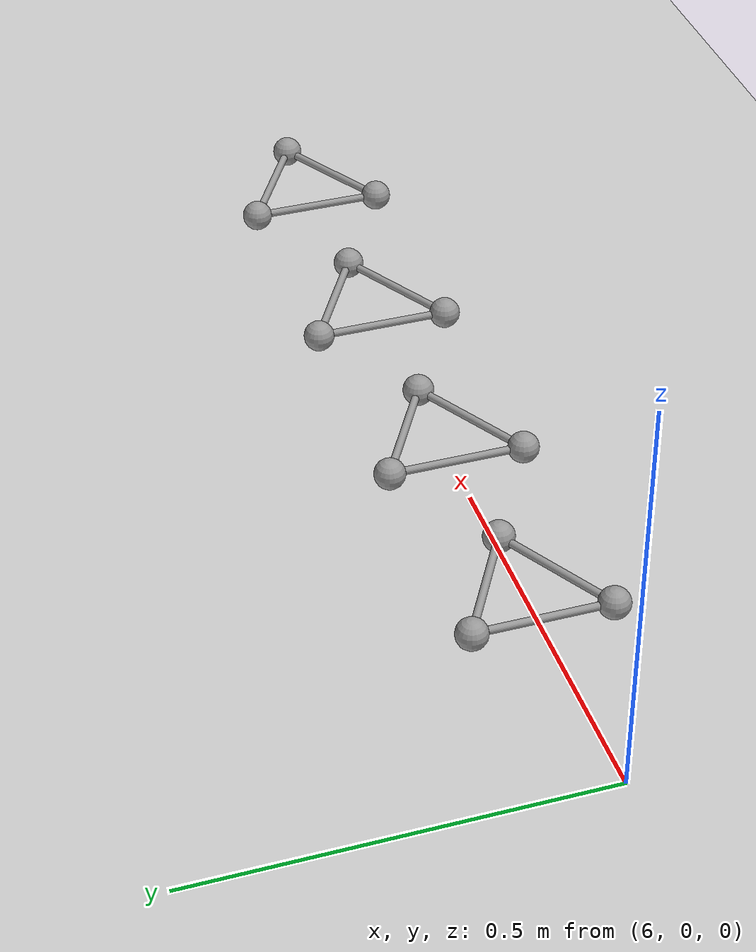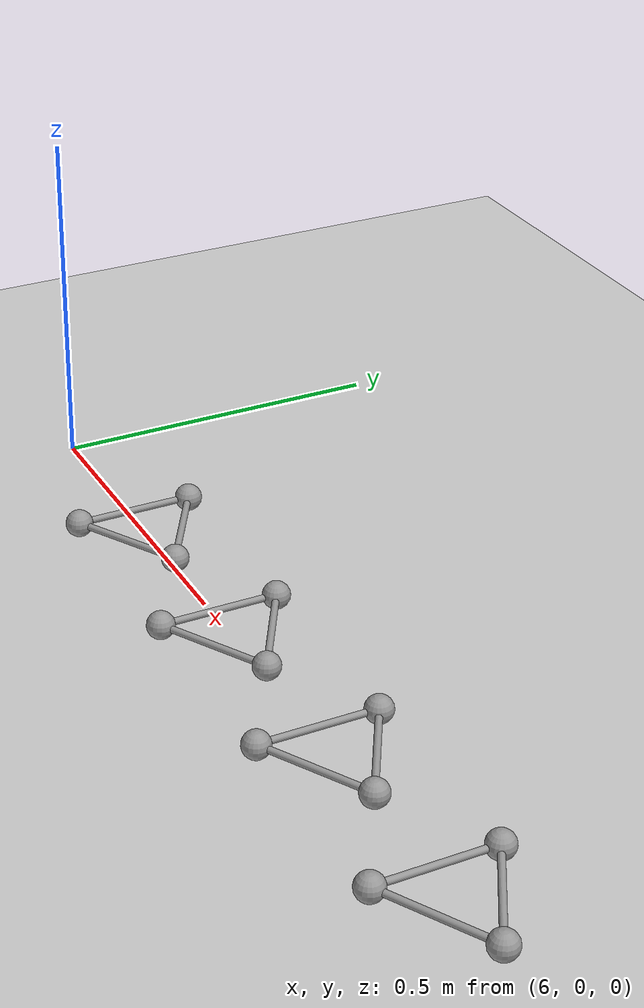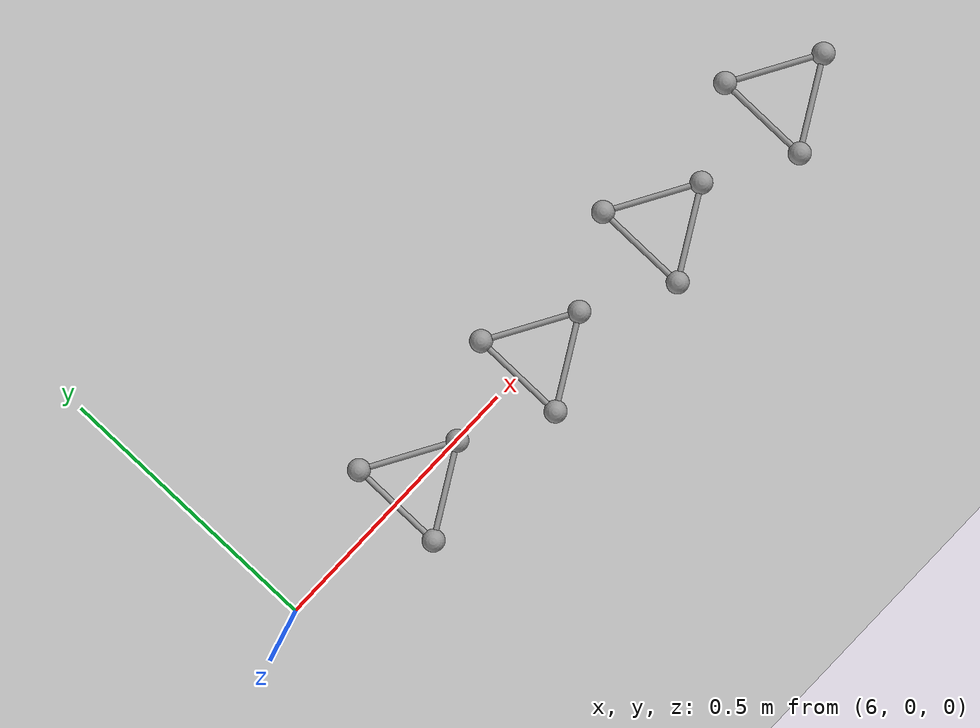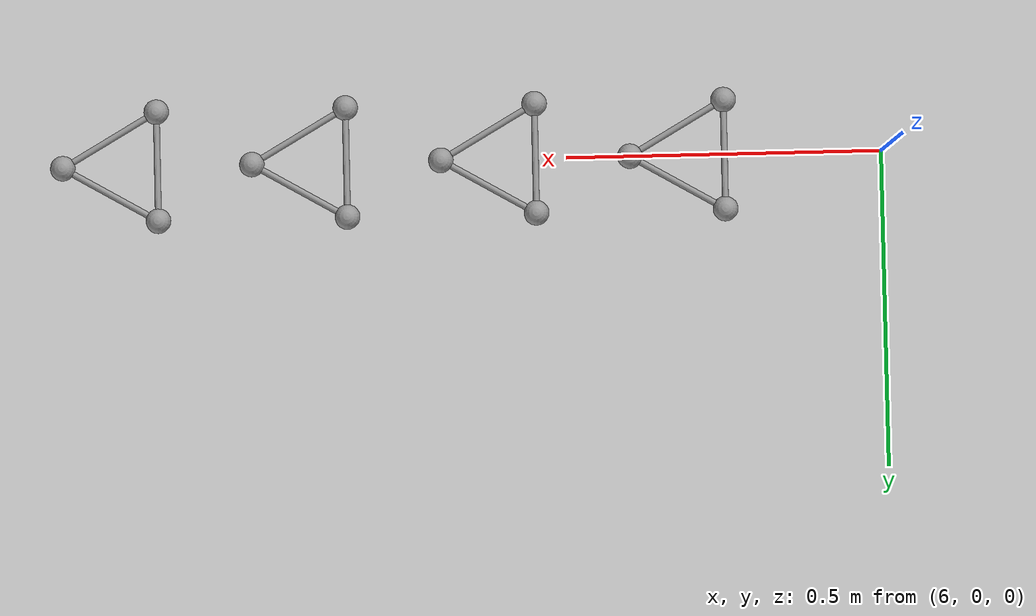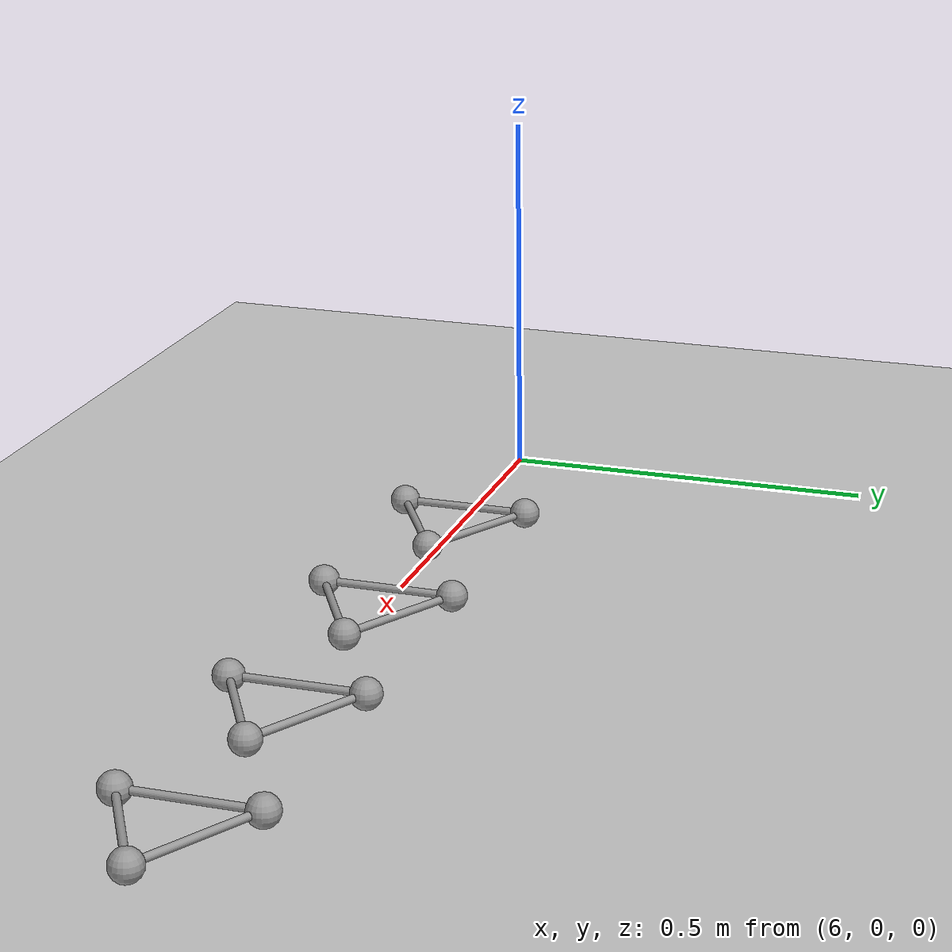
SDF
<sdf version="1.6">
 <world name="default">
  <include><uri>model://ground_plane</uri></include>
  <include><uri>model://sun</uri></include>
  <model name="triball_21">
   <pose>6.3 0 0 0 0 0</pose>
   <link name="link">
    <pose>0 0 0.02 0 0 0</pose>
    <inertial>
     <mass>0.060318578948924034</mass>
     <inertia>
      <ixx>0.000311243867376448</ixx>
      <iyy>0.000311243867376448</iyy>
      <izz>0.0006128367621210681</izz>
      <ixy>0.0</ixy>
      <ixz>0.0</ixz>
      <iyz>0.0</iyz>
     </inertia>
    </inertial>
    <sensor name="imu" type="imu"><always_on>true</always_on></sensor>
    <collision name="collision_a">
     <pose>0.09999999999999999 0 0  0 0 0</pose>
     <geometry><sphere><radius>0.02</radius></sphere></geometry>
     <surface><friction><ode><mu>0.9</mu><mu2>0.9</mu2><fdir1>1 0 0</fdir1></ode></friction></surface>
    </collision>
    <visual name="visual_a">
     <pose>0.09999999999999999 0 0  0 0 0</pose>
     <geometry><sphere><radius>0.02</radius></sphere></geometry>
     <material>
      <script><uri>file://media/materials/scripts/gazebo.material</uri><name>Gazebo/Grey</name></script>
     </material>
    </visual>
    <collision name="collision_a_to_b">
     <pose>0.024999999999999998 0.04330127018922193 0.0  -1.5707962969925737 -1.0471975511965974 1.047197525387029</pose>
     <geometry><cylinder><radius>0.005</radius><length>0.17320508075688773</length></cylinder></geometry>
     <surface><friction><ode><mu>0.9</mu><mu2>0.9</mu2></ode></friction></surface>
    </collision>
    <visual name="visual_a_to_b">
     <pose>0.024999999999999998 0.04330127018922193 0.0  -1.5707962969925737 -1.0471975511965974 1.047197525387029</pose>
     <geometry><cylinder><radius>0.005</radius><length>0.17320508075688773</length></cylinder></geometry>
     <material>
      <script><uri>file://media/materials/scripts/gazebo.material</uri><name>Gazebo/Grey</name></script>
     </material>
    </visual>
    <collision name="collision_a_to_c">
     <pose>0.024999999999999998 -0.04330127018922193 0.0  1.5707962969925737 -1.0471975511965974 -1.047197525387029</pose>
     <geometry><cylinder><radius>0.005</radius><length>0.17320508075688773</length></cylinder></geometry>
     <surface><friction><ode><mu>0.9</mu><mu2>0.9</mu2></ode></friction></surface>
    </collision>
    <visual name="visual_a_to_c">
     <pose>0.024999999999999998 -0.04330127018922193 0.0  1.5707962969925737 -1.0471975511965974 -1.047197525387029</pose>
     <geometry><cylinder><radius>0.005</radius><length>0.17320508075688773</length></cylinder></geometry>
     <material>
      <script><uri>file://media/materials/scripts/gazebo.material</uri><name>Gazebo/Grey</name></script>
     </material>
    </visual>
    <collision name="collision_b">
     <pose>-0.049999999999999996 0.08660254037844387 0  0 0 0</pose>
     <geometry><sphere><radius>0.02</radius></sphere></geometry>
     <surface><friction><ode><mu>0.9</mu><mu2>0.9</mu2><fdir1>1 0 0</fdir1></ode></friction></surface>
    </collision>
    <visual name="visual_b">
     <pose>-0.049999999999999996 0.08660254037844387 0  0 0 0</pose>
     <geometry><sphere><radius>0.02</radius></sphere></geometry>
     <material>
      <script><uri>file://media/materials/scripts/gazebo.material</uri><name>Gazebo/Grey</name></script>
     </material>
    </visual>
    <collision name="collision_b_to_c">
     <pose>-0.049999999999999996 0.0 0.0  1.5707963267948963 -0.0 0.0</pose>
     <geometry><cylinder><radius>0.005</radius><length>0.17320508075688773</length></cylinder></geometry>
     <surface><friction><ode><mu>0.9</mu><mu2>0.9</mu2></ode></friction></surface>
    </collision>
    <visual name="visual_b_to_c">
     <pose>-0.049999999999999996 0.0 0.0  1.5707963267948963 -0.0 0.0</pose>
     <geometry><cylinder><radius>0.005</radius><length>0.17320508075688773</length></cylinder></geometry>
     <material>
      <script><uri>file://media/materials/scripts/gazebo.material</uri><name>Gazebo/Grey</name></script>
     </material>
    </visual>
    <collision name="collision_c">
     <pose>-0.049999999999999996 -0.08660254037844387 0  0 0 0</pose>
     <geometry><sphere><radius>0.02</radius></sphere></geometry>
     <surface><friction><ode><mu>0.9</mu><mu2>0.9</mu2><fdir1>1 0 0</fdir1></ode></friction></surface>
    </collision>
    <visual name="visual_c">
     <pose>-0.049999999999999996 -0.08660254037844387 0  0 0 0</pose>
     <geometry><sphere><radius>0.02</radius></sphere></geometry>
     <material>
      <script><uri>file://media/materials/scripts/gazebo.material</uri><name>Gazebo/Grey</name></script>
     </material>
    </visual>
   </link>
   <plugin name="triball_21" filename="libInitialVelocityPlugin.so">
    <linear>0 15 0</linear>
    <angular>0 0 46.875</angular>
   </plugin>
  </model>
  <model name="triball_22">
   <pose>6.6 0 0 0 0 0</pose>
   <link name="link">
    <pose>0 0 0.02 0 0 0</pose>
    <inertial>
     <mass>0.060318578948924034</mass>
     <inertia>
      <ixx>0.000311243867376448</ixx>
      <iyy>0.000311243867376448</iyy>
      <izz>0.0006128367621210681</izz>
      <ixy>0.0</ixy>
      <ixz>0.0</ixz>
      <iyz>0.0</iyz>
     </inertia>
    </inertial>
    <sensor name="imu" type="imu"><always_on>true</always_on></sensor>
    <collision name="collision_a">
     <pose>0.09999999999999999 0 0  0 0 0</pose>
     <geometry><sphere><radius>0.02</radius></sphere></geometry>
     <surface><friction><ode><mu>0.9</mu><mu2>0.9</mu2><fdir1>1 0 0</fdir1></ode></friction></surface>
    </collision>
    <visual name="visual_a">
     <pose>0.09999999999999999 0 0  0 0 0</pose>
     <geometry><sphere><radius>0.02</radius></sphere></geometry>
     <material>
      <script><uri>file://media/materials/scripts/gazebo.material</uri><name>Gazebo/Grey</name></script>
     </material>
    </visual>
    <collision name="collision_a_to_b">
     <pose>0.024999999999999998 0.04330127018922193 0.0  -1.5707962969925737 -1.0471975511965974 1.047197525387029</pose>
     <geometry><cylinder><radius>0.005</radius><length>0.17320508075688773</length></cylinder></geometry>
     <surface><friction><ode><mu>0.9</mu><mu2>0.9</mu2></ode></friction></surface>
    </collision>
    <visual name="visual_a_to_b">
     <pose>0.024999999999999998 0.04330127018922193 0.0  -1.5707962969925737 -1.0471975511965974 1.047197525387029</pose>
     <geometry><cylinder><radius>0.005</radius><length>0.17320508075688773</length></cylinder></geometry>
     <material>
      <script><uri>file://media/materials/scripts/gazebo.material</uri><name>Gazebo/Grey</name></script>
     </material>
    </visual>
    <collision name="collision_a_to_c">
     <pose>0.024999999999999998 -0.04330127018922193 0.0  1.5707962969925737 -1.0471975511965974 -1.047197525387029</pose>
     <geometry><cylinder><radius>0.005</radius><length>0.17320508075688773</length></cylinder></geometry>
     <surface><friction><ode><mu>0.9</mu><mu2>0.9</mu2></ode></friction></surface>
    </collision>
    <visual name="visual_a_to_c">
     <pose>0.024999999999999998 -0.04330127018922193 0.0  1.5707962969925737 -1.0471975511965974 -1.047197525387029</pose>
     <geometry><cylinder><radius>0.005</radius><length>0.17320508075688773</length></cylinder></geometry>
     <material>
      <script><uri>file://media/materials/scripts/gazebo.material</uri><name>Gazebo/Grey</name></script>
     </material>
    </visual>
    <collision name="collision_b">
     <pose>-0.049999999999999996 0.08660254037844387 0  0 0 0</pose>
     <geometry><sphere><radius>0.02</radius></sphere></geometry>
     <surface><friction><ode><mu>0.9</mu><mu2>0.9</mu2><fdir1>1 0 0</fdir1></ode></friction></surface>
    </collision>
    <visual name="visual_b">
     <pose>-0.049999999999999996 0.08660254037844387 0  0 0 0</pose>
     <geometry><sphere><radius>0.02</radius></sphere></geometry>
     <material>
      <script><uri>file://media/materials/scripts/gazebo.material</uri><name>Gazebo/Grey</name></script>
     </material>
    </visual>
    <collision name="collision_b_to_c">
     <pose>-0.049999999999999996 0.0 0.0  1.5707963267948963 -0.0 0.0</pose>
     <geometry><cylinder><radius>0.005</radius><length>0.17320508075688773</length></cylinder></geometry>
     <surface><friction><ode><mu>0.9</mu><mu2>0.9</mu2></ode></friction></surface>
    </collision>
    <visual name="visual_b_to_c">
     <pose>-0.049999999999999996 0.0 0.0  1.5707963267948963 -0.0 0.0</pose>
     <geometry><cylinder><radius>0.005</radius><length>0.17320508075688773</length></cylinder></geometry>
     <material>
      <script><uri>file://media/materials/scripts/gazebo.material</uri><name>Gazebo/Grey</name></script>
     </material>
    </visual>
    <collision name="collision_c">
     <pose>-0.049999999999999996 -0.08660254037844387 0  0 0 0</pose>
     <geometry><sphere><radius>0.02</radius></sphere></geometry>
     <surface><friction><ode><mu>0.9</mu><mu2>0.9</mu2><fdir1>1 0 0</fdir1></ode></friction></surface>
    </collision>
    <visual name="visual_c">
     <pose>-0.049999999999999996 -0.08660254037844387 0  0 0 0</pose>
     <geometry><sphere><radius>0.02</radius></sphere></geometry>
     <material>
      <script><uri>file://media/materials/scripts/gazebo.material</uri><name>Gazebo/Grey</name></script>
     </material>
    </visual>
   </link>
   <plugin name="triball_22" filename="libInitialVelocityPlugin.so">
    <linear>0 15 0</linear>
    <angular>0 0 56.25</angular>
   </plugin>
  </model>
  <model name="triball_23">
   <pose>6.8999999999999995 0 0 0 0 0</pose>
   <link name="link">
    <pose>0 0 0.02 0 0 0</pose>
    <inertial>
     <mass>0.060318578948924034</mass>
     <inertia>
      <ixx>0.000311243867376448</ixx>
      <iyy>0.000311243867376448</iyy>
      <izz>0.0006128367621210681</izz>
      <ixy>0.0</ixy>
      <ixz>0.0</ixz>
      <iyz>0.0</iyz>
     </inertia>
    </inertial>
    <sensor name="imu" type="imu"><always_on>true</always_on></sensor>
    <collision name="collision_a">
     <pose>0.09999999999999999 0 0  0 0 0</pose>
     <geometry><sphere><radius>0.02</radius></sphere></geometry>
     <surface><friction><ode><mu>0.9</mu><mu2>0.9</mu2><fdir1>1 0 0</fdir1></ode></friction></surface>
    </collision>
    <visual name="visual_a">
     <pose>0.09999999999999999 0 0  0 0 0</pose>
     <geometry><sphere><radius>0.02</radius></sphere></geometry>
     <material>
      <script><uri>file://media/materials/scripts/gazebo.material</uri><name>Gazebo/Grey</name></script>
     </material>
    </visual>
    <collision name="collision_a_to_b">
     <pose>0.024999999999999998 0.04330127018922193 0.0  -1.5707962969925737 -1.0471975511965974 1.047197525387029</pose>
     <geometry><cylinder><radius>0.005</radius><length>0.17320508075688773</length></cylinder></geometry>
     <surface><friction><ode><mu>0.9</mu><mu2>0.9</mu2></ode></friction></surface>
    </collision>
    <visual name="visual_a_to_b">
     <pose>0.024999999999999998 0.04330127018922193 0.0  -1.5707962969925737 -1.0471975511965974 1.047197525387029</pose>
     <geometry><cylinder><radius>0.005</radius><length>0.17320508075688773</length></cylinder></geometry>
     <material>
      <script><uri>file://media/materials/scripts/gazebo.material</uri><name>Gazebo/Grey</name></script>
     </material>
    </visual>
    <collision name="collision_a_to_c">
     <pose>0.024999999999999998 -0.04330127018922193 0.0  1.5707962969925737 -1.0471975511965974 -1.047197525387029</pose>
     <geometry><cylinder><radius>0.005</radius><length>0.17320508075688773</length></cylinder></geometry>
     <surface><friction><ode><mu>0.9</mu><mu2>0.9</mu2></ode></friction></surface>
    </collision>
    <visual name="visual_a_to_c">
     <pose>0.024999999999999998 -0.04330127018922193 0.0  1.5707962969925737 -1.0471975511965974 -1.047197525387029</pose>
     <geometry><cylinder><radius>0.005</radius><length>0.17320508075688773</length></cylinder></geometry>
     <material>
      <script><uri>file://media/materials/scripts/gazebo.material</uri><name>Gazebo/Grey</name></script>
     </material>
    </visual>
    <collision name="collision_b">
     <pose>-0.049999999999999996 0.08660254037844387 0  0 0 0</pose>
     <geometry><sphere><radius>0.02</radius></sphere></geometry>
     <surface><friction><ode><mu>0.9</mu><mu2>0.9</mu2><fdir1>1 0 0</fdir1></ode></friction></surface>
    </collision>
    <visual name="visual_b">
     <pose>-0.049999999999999996 0.08660254037844387 0  0 0 0</pose>
     <geometry><sphere><radius>0.02</radius></sphere></geometry>
     <material>
      <script><uri>file://media/materials/scripts/gazebo.material</uri><name>Gazebo/Grey</name></script>
     </material>
    </visual>
    <collision name="collision_b_to_c">
     <pose>-0.049999999999999996 0.0 0.0  1.5707963267948963 -0.0 0.0</pose>
     <geometry><cylinder><radius>0.005</radius><length>0.17320508075688773</length></cylinder></geometry>
     <surface><friction><ode><mu>0.9</mu><mu2>0.9</mu2></ode></friction></surface>
    </collision>
    <visual name="visual_b_to_c">
     <pose>-0.049999999999999996 0.0 0.0  1.5707963267948963 -0.0 0.0</pose>
     <geometry><cylinder><radius>0.005</radius><length>0.17320508075688773</length></cylinder></geometry>
     <material>
      <script><uri>file://media/materials/scripts/gazebo.material</uri><name>Gazebo/Grey</name></script>
     </material>
    </visual>
    <collision name="collision_c">
     <pose>-0.049999999999999996 -0.08660254037844387 0  0 0 0</pose>
     <geometry><sphere><radius>0.02</radius></sphere></geometry>
     <surface><friction><ode><mu>0.9</mu><mu2>0.9</mu2><fdir1>1 0 0</fdir1></ode></friction></surface>
    </collision>
    <visual name="visual_c">
     <pose>-0.049999999999999996 -0.08660254037844387 0  0 0 0</pose>
     <geometry><sphere><radius>0.02</radius></sphere></geometry>
     <material>
      <script><uri>file://media/materials/scripts/gazebo.material</uri><name>Gazebo/Grey</name></script>
     </material>
    </visual>
   </link>
   <plugin name="triball_23" filename="libInitialVelocityPlugin.so">
    <linear>0 15 0</linear>
    <angular>0 0 65.625</angular>
   </plugin>
  </model>
  <model name="triball_24">
   <pose>7.199999999999999 0 0 0 0 0</pose>
   <link name="link">
    <pose>0 0 0.02 0 0 0</pose>
    <inertial>
     <mass>0.060318578948924034</mass>
     <inertia>
      <ixx>0.000311243867376448</ixx>
      <iyy>0.000311243867376448</iyy>
      <izz>0.0006128367621210681</izz>
      <ixy>0.0</ixy>
      <ixz>0.0</ixz>
      <iyz>0.0</iyz>
     </inertia>
    </inertial>
    <sensor name="imu" type="imu"><always_on>true</always_on></sensor>
    <collision name="collision_a">
     <pose>0.09999999999999999 0 0  0 0 0</pose>
     <geometry><sphere><radius>0.02</radius></sphere></geometry>
     <surface><friction><ode><mu>0.9</mu><mu2>0.9</mu2><fdir1>1 0 0</fdir1></ode></friction></surface>
    </collision>
    <visual name="visual_a">
     <pose>0.09999999999999999 0 0  0 0 0</pose>
     <geometry><sphere><radius>0.02</radius></sphere></geometry>
     <material>
      <script><uri>file://media/materials/scripts/gazebo.material</uri><name>Gazebo/Grey</name></script>
     </material>
    </visual>
    <collision name="collision_a_to_b">
     <pose>0.024999999999999998 0.04330127018922193 0.0  -1.5707962969925737 -1.0471975511965974 1.047197525387029</pose>
     <geometry><cylinder><radius>0.005</radius><length>0.17320508075688773</length></cylinder></geometry>
     <surface><friction><ode><mu>0.9</mu><mu2>0.9</mu2></ode></friction></surface>
    </collision>
    <visual name="visual_a_to_b">
     <pose>0.024999999999999998 0.04330127018922193 0.0  -1.5707962969925737 -1.0471975511965974 1.047197525387029</pose>
     <geometry><cylinder><radius>0.005</radius><length>0.17320508075688773</length></cylinder></geometry>
     <material>
      <script><uri>file://media/materials/scripts/gazebo.material</uri><name>Gazebo/Grey</name></script>
     </material>
    </visual>
    <collision name="collision_a_to_c">
     <pose>0.024999999999999998 -0.04330127018922193 0.0  1.5707962969925737 -1.0471975511965974 -1.047197525387029</pose>
     <geometry><cylinder><radius>0.005</radius><length>0.17320508075688773</length></cylinder></geometry>
     <surface><friction><ode><mu>0.9</mu><mu2>0.9</mu2></ode></friction></surface>
    </collision>
    <visual name="visual_a_to_c">
     <pose>0.024999999999999998 -0.04330127018922193 0.0  1.5707962969925737 -1.0471975511965974 -1.047197525387029</pose>
     <geometry><cylinder><radius>0.005</radius><length>0.17320508075688773</length></cylinder></geometry>
     <material>
      <script><uri>file://media/materials/scripts/gazebo.material</uri><name>Gazebo/Grey</name></script>
     </material>
    </visual>
    <collision name="collision_b">
     <pose>-0.049999999999999996 0.08660254037844387 0  0 0 0</pose>
     <geometry><sphere><radius>0.02</radius></sphere></geometry>
     <surface><friction><ode><mu>0.9</mu><mu2>0.9</mu2><fdir1>1 0 0</fdir1></ode></friction></surface>
    </collision>
    <visual name="visual_b">
     <pose>-0.049999999999999996 0.08660254037844387 0  0 0 0</pose>
     <geometry><sphere><radius>0.02</radius></sphere></geometry>
     <material>
      <script><uri>file://media/materials/scripts/gazebo.material</uri><name>Gazebo/Grey</name></script>
     </material>
    </visual>
    <collision name="collision_b_to_c">
     <pose>-0.049999999999999996 0.0 0.0  1.5707963267948963 -0.0 0.0</pose>
     <geometry><cylinder><radius>0.005</radius><length>0.17320508075688773</length></cylinder></geometry>
     <surface><friction><ode><mu>0.9</mu><mu2>0.9</mu2></ode></friction></surface>
    </collision>
    <visual name="visual_b_to_c">
     <pose>-0.049999999999999996 0.0 0.0  1.5707963267948963 -0.0 0.0</pose>
     <geometry><cylinder><radius>0.005</radius><length>0.17320508075688773</length></cylinder></geometry>
     <material>
      <script><uri>file://media/materials/scripts/gazebo.material</uri><name>Gazebo/Grey</name></script>
     </material>
    </visual>
    <collision name="collision_c">
     <pose>-0.049999999999999996 -0.08660254037844387 0  0 0 0</pose>
     <geometry><sphere><radius>0.02</radius></sphere></geometry>
     <surface><friction><ode><mu>0.9</mu><mu2>0.9</mu2><fdir1>1 0 0</fdir1></ode></friction></surface>
    </collision>
    <visual name="visual_c">
     <pose>-0.049999999999999996 -0.08660254037844387 0  0 0 0</pose>
     <geometry><sphere><radius>0.02</radius></sphere></geometry>
     <material>
      <script><uri>file://media/materials/scripts/gazebo.material</uri><name>Gazebo/Grey</name></script>
     </material>
    </visual>
   </link>
   <plugin name="triball_24" filename="libInitialVelocityPlugin.so">
    <linear>0 15 0</linear>
    <angular>0 0 75.0</angular>
   </plugin>
  </model>
 </world>
</sdf>
